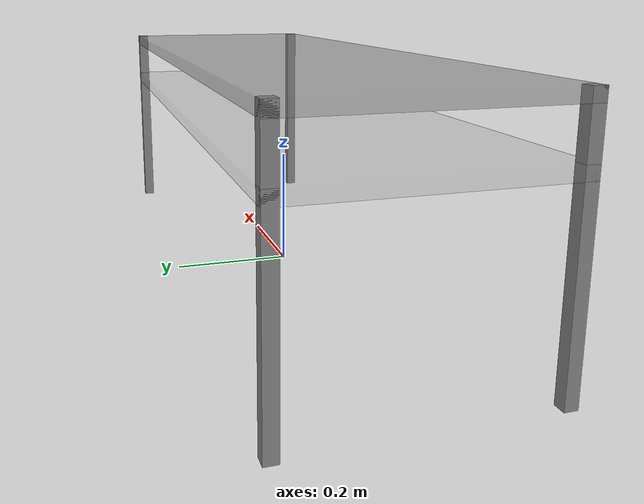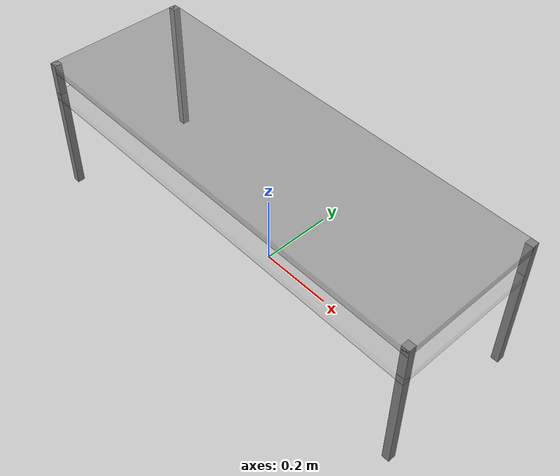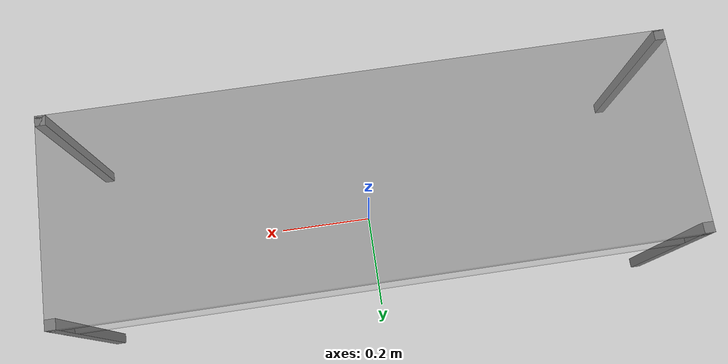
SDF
<sdf version='1.5'>
    <model name='nyboda_table'>
        <pose>0.000000 0.000000 0.000000 0.000000 0.000000 0.000000</pose>
        <link name='Table_0'>
            <pose>0.000000 0.000000 0.380000 0.000000 -0.000000 0.000000</pose>
            <collision name='collision'>
                <geometry>
                    <box>
                        <size>1.200000 0.400000 0.020000</size>
                    </box>
                </geometry>
            </collision>
            <visual name='visual'>
                <geometry>
                    <box>
                        <size>1.200000 0.400000 0.020000</size>
                    </box>
                </geometry>
                <material>
                    <ambient>.5 .5 .5 1</ambient>
                    <diffuse>.5 .5 .5 0.5</diffuse>
                </material>
            </visual>
        </link>
        <link name='Table_1'>
            <pose>0.590000 0.190000 0.190000 0.000000 -0.000000 0.000000</pose>
            <collision name='collision'>
                <geometry>
                    <box>
                        <size>0.020000 0.020000 0.400000</size>
                    </box>
                </geometry>
            </collision>
            <visual name='visual'>
                <geometry>
                    <box>
                        <size>0.020000 0.020000 0.400000</size>
                    </box>
                </geometry>
                <material>
                    <ambient>.5 .5 .5 1</ambient>
                    <diffuse>.5 .5 .5 1.000000</diffuse>
                </material>
            </visual>
        </link>
        <link name='Table_2'>
            <pose>-0.590000 0.190000 0.190000 0.000000 -0.000000 0.000000</pose>
            <collision name='collision'>
                <geometry>
                    <box>
                        <size>0.020000 0.020000 0.400000</size>
                    </box>
                </geometry>
            </collision>
            <visual name='visual'>
                <geometry>
                    <box>
                        <size>0.020000 0.020000 0.400000</size>
                    </box>
                </geometry>
                <material>
                    <ambient>.5 .5 .5 1</ambient>
                    <diffuse>.5 .5 .5 1.000000</diffuse>
                </material>
            </visual>
        </link>
        <link name='Table_3'>
            <pose>0.590000 -0.190000 0.190000 0.000000 -0.000000 0.000000</pose>
            <collision name='collision'>
                <geometry>
                    <box>
                        <size>0.020000 0.020000 0.400000</size>
                    </box>
                </geometry>
            </collision>
            <visual name='visual'>
                <geometry>
                    <box>
                        <size>0.020000 0.020000 0.400000</size>
                    </box>
                </geometry>
                <material>
                    <ambient>.5 .5 .5 1</ambient>
                    <diffuse>.5 .5 .5 1.000000</diffuse>
                </material>
            </visual>
        </link>
        <link name='Table_4'>
            <pose>-0.590000 -0.190000 0.190000 0.000000 -0.000000 0.000000</pose>
            <collision name='collision'>
                <geometry>
                    <box>
                        <size>0.020000 0.020000 0.400000</size>
                    </box>
                </geometry>
            </collision>
            <visual name='visual'>
                <geometry>
                    <box>
                        <size>0.020000 0.020000 0.400000</size>
                    </box>
                </geometry>
                <material>
                    <ambient>.5 .5 .5 1</ambient>
                    <diffuse>.5 .5 .5 1.000000</diffuse>
                </material>
            </visual>
        </link>
        <link name='Table_5'>
            <pose>0.000000 0.000000 0.290000 0.000000 -0.000000 0.000000</pose>
            <collision name='collision'>
                <geometry>
                    <box>
                        <size>1.200000 0.400000 0.020000</size>
                    </box>
                </geometry>
            </collision>
            <visual name='visual'>
                <geometry>
                    <box>
                        <size>1.200000 0.400000 0.020000</size>
                    </box>
                </geometry>
                <material>
                    <ambient>.5 .5 .5 1</ambient>
                    <diffuse>.5 .5 .5 0.2</diffuse>
                </material>
            </visual>
        </link>
        <static>1</static>
    </model>
</sdf>
